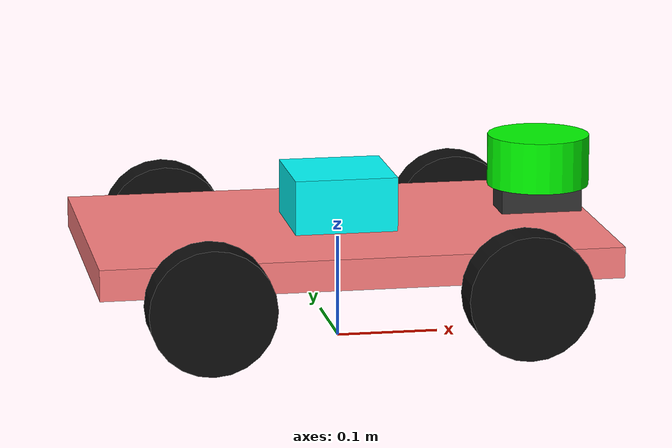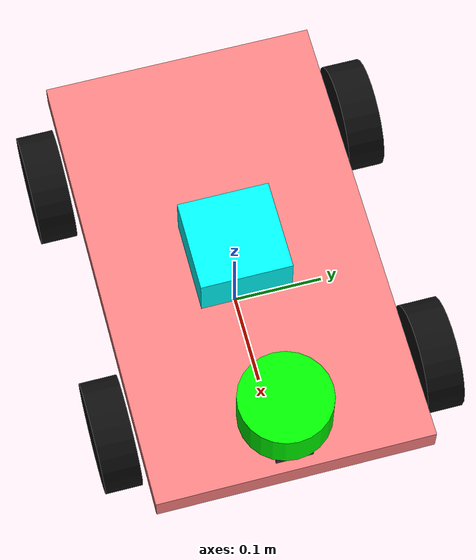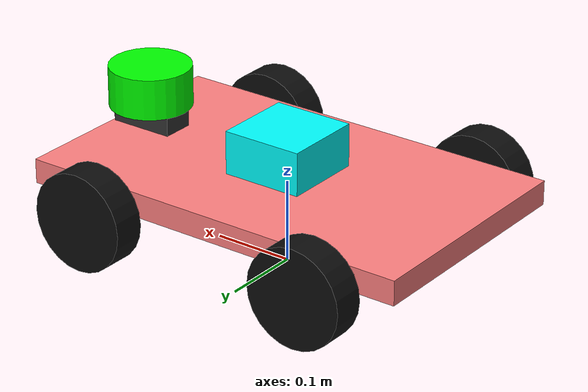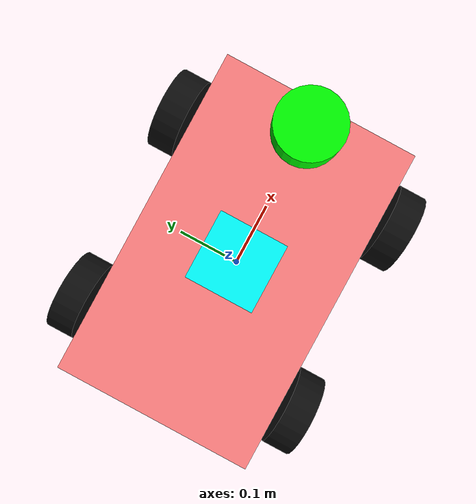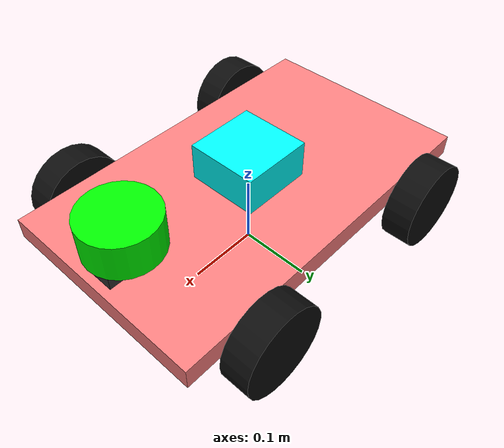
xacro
<?xml version="1.0"?>
<robot name="rover" xmlns:xacro="http://www.ros.org/wiki/xacro">
  <xacro:arg name="namespace" default="" />

  <!-- ======= MATERIAL DEFINITIONS ======= -->
  <material name="body_teal">
    <color rgba="1.0 0.5 0.5 1.0"/>
  </material>
  <material name="wheel_rim">
    <color rgba="0.7 0.7 0.75 1.0"/>
  </material>
  <material name="wheel_hub">
    <color rgba="0.2 0.2 0.2 1.0"/>
  </material>
  <material name="wheel_tread">
    <color rgba="0.05 0.05 0.05 1.0"/>
  </material>
  <material name="green_laser">
    <color rgba="0 1.0 0 1.0"/>
  </material>

  <!-- ======= GAZEBO MATERIALS ======= -->
  <gazebo reference="base_link">
    <material>Gazebo/Green</material>
  </gazebo>
  <gazebo reference="front_left_wheel">
    <material>Gazebo/Black</material>
    <mu1 value= "0.0"/> <!--main direction-->
    <mu2 value= "0.0"/> <!--perpendicular direction-->
  </gazebo>
  <gazebo reference="front_right_wheel">
    <material>Gazebo/Black</material>
    <mu1 value= "0.0"/> <!--main direction-->
    <mu2 value= "0.0"/> <!--perpendicular direction-->
  </gazebo>
  <gazebo reference="rear_left_wheel">
    <material>Gazebo/Black</material>
  </gazebo>
  <gazebo reference="rear_right_wheel">
    <material>Gazebo/Black</material>
  </gazebo>

  <!-- ======= BASE FOOTPRINT ======= -->
  <link name="base_footprint"/>

  <joint name="base_footprint_joint" type="fixed">
    <parent link="base_footprint"/>
    <child link="base_link"/>
    <origin xyz="0 0 0.05" rpy="0 0 0"/>
  </joint>

  <!-- ======= MAIN BODY ======= -->
  <link name="base_link">
    <visual>
      <geometry>
        <box size="0.5 0.3 0.03"/>
      </geometry>
      <origin xyz="0 0 0.05" rpy="0 0 0"/>
      <material name="body_teal"/>
    </visual>
    <collision>
      <geometry>
        <box size="0.5 0.3 0.03"/>
      </geometry>
      <origin xyz="0 0 0" rpy="0 0 0"/>
    </collision>
    <inertial>
      <mass value="3.0"/>
      <inertia ixx="0.022725" ixy="0" ixz="0" iyy="0.062725" iyz="0" izz="0.085000"/>
    </inertial>
  </link>

   <!-- ======= WHEELS (solid cylinders) ======= -->
  <!-- Front Left Wheel -->
  <link name="front_left_wheel">
    <visual>
      <geometry>
        <cylinder length="0.04" radius="0.06"/>
      </geometry>
      <material name="wheel_tread"/>
    </visual>
    <collision>
      <geometry>
        <cylinder length="0.04" radius="0.06"/>
      </geometry>
    </collision>
    <inertial>
      <mass value="0.3"/>
      <inertia ixx="0.00031" ixy="0" ixz="0" iyy="0.00054" iyz="0" izz="0.00031"/>
    </inertial>
  </link>

  <joint name="front_left_wheel_joint" type="continuous">
    <parent link="base_link"/>
    <child link="front_left_wheel"/>
    <origin xyz="0.15 0.175 0.03" rpy="${-pi/2} 0 0"/>
    <axis xyz="0 0 1"/>
  </joint>

  <!-- Front Right Wheel -->
  <link name="front_right_wheel">
    <visual>
      <geometry>
        <cylinder length="0.04" radius="0.06"/>
      </geometry>
      <material name="wheel_tread"/>
    </visual>
    <collision>
      <geometry>
        <cylinder length="0.04" radius="0.06"/>
      </geometry>
    </collision>
    <inertial>
      <mass value="0.3"/>
      <origin xyz="0 0 0"/>
      <inertia ixx="0.00031" ixy="0" ixz="0" iyy="0.00054" iyz="0" izz="0.00031"/>
    </inertial>
  </link>

  <joint name="front_right_wheel_joint" type="continuous">
    <parent link="base_link"/>
    <child link="front_right_wheel"/>
    <origin xyz="0.15 -0.175 0.03" rpy="${pi/2} 0 0"/>
    <axis xyz="0 0 -1"/>
  </joint>

  <!-- Rear Left Wheel -->
  <link name="rear_left_wheel">
    <visual>
      <geometry>
        <cylinder length="0.04" radius="0.06"/>
      </geometry>
      <material name="wheel_tread"/>
    </visual>
    <collision>
      <geometry>
        <cylinder length="0.04" radius="0.06"/>
      </geometry>
    </collision>
    <inertial>
      <mass value="0.3"/>
      <inertia ixx="0.00031" ixy="0" ixz="0" iyy="0.00054" iyz="0" izz="0.00031"/>
    </inertial>
  </link>

  <joint name="rear_left_wheel_joint" type="continuous">
    <parent link="base_link"/>
    <child link="rear_left_wheel"/>
    <origin xyz="-0.15 0.175 0.03" rpy="${-pi/2} 0 0"/>
    <axis xyz="0 0 1"/>
  </joint>

  <!-- Rear Right Wheel -->
  <link name="rear_right_wheel">
    <visual>
      <geometry>
        <cylinder length="0.04" radius="0.06"/>
      </geometry>
      <material name="wheel_tread"/>
    </visual>
    <collision>
      <geometry>
        <cylinder length="0.04" radius="0.06"/>
      </geometry>
    </collision>
    <inertial>
      <mass value="0.3"/>
      <inertia ixx="0.00031" ixy="0" ixz="0" iyy="0.00054" iyz="0" izz="0.00031"/>
    </inertial>
  </link>

  <joint name="rear_right_wheel_joint" type="continuous">
    <parent link="base_link"/>
    <child link="rear_right_wheel"/>
    <origin xyz="-0.15 -0.175 0.03" rpy="${pi/2} 0 0"/>
    <axis xyz="0 0 -1"/>
  </joint>

  <link name="link2_mount">
    <visual>
      <geometry>
        <box size="0.08 0.04 0.04"/>
      </geometry>
      <origin xyz="0 0 0" rpy="0 0 0"/>
      <material name="wheel_hub"/>
    </visual>
    <inertial>
      <mass value="0.1"/>
      <origin xyz="0 0 0"/>
      <inertia ixx="0.00002667" ixy="0.0" ixz="0.0" iyy="0.00006667" iyz="0.0" izz="0.00006667"/>
    </inertial>
  </link>

  <!-- ======= LASER SENSORS ======= -->
  <!-- Vertical laser mounted on link1_mount -->

  <!-- Horizontal laser mounted on base_link -->
  <link name="laser_link2">
    <visual>
      <geometry>
        <cylinder length="0.05" radius="0.05"/>
      </geometry>
      <material name="green_laser"/>
    </visual>
    <collision>
      <geometry>
        <cylinder length="0.05" radius="0.05"/>
      </geometry>
      <origin xyz="0 0 0" rpy="0 0 0"/>
    </collision>
    <inertial>
      <mass value="0.1"/>
      <inertia ixx="0.00008333" ixy="0.0" ixz="0.0" iyy="0.000125" iyz="0.0" izz="0.00008333"/>
    </inertial>
  </link>

   <joint name="base_to_link2_joint" type="fixed">
    <parent link="base_link"/>
    <child link="link2_mount"/>
    <origin xyz="0.20 0 0.09" rpy="0 0 0"/>
  </joint>

  <joint name="laser_joint2" type="fixed">
    <parent link="link2_mount"/>
    <child link="laser_link2"/>
    <origin xyz="0 0 0.03"  rpy="0 0 0"/>
  </joint>

  <!-- ======= GAZEBO PLUGINS for sensors ======= -->
  <gazebo reference="link1_mount">
    <sensor name="laser_vertical" type="ray">
      <pose>0 0 0 0 0 0</pose>
      <visualize>false</visualize>
      <update_rate>10.0</update_rate>
      <ray>
        <scan>
          <horizontal>
            <samples>720</samples>
            <resolution>1.0</resolution>
            <min_angle>-1.57</min_angle>
            <max_angle>1.57</max_angle>
          </horizontal>
        </scan>
        <range>
          <min>0.1</min>
          <max>10.0</max>
          <resolution>0.01</resolution>
        </range>
      </ray>
      <plugin name="gazebo_ros_vertical_laser" filename="libgazebo_ros_ray_sensor.so">
        <ros>
         <remapping>~/out:=v_scan</remapping>
        </ros>
        <topicName>/vertical_scan</topicName>
        <frameName>laser_link1</frameName>
        <output_type>sensor_msgs/LaserScan</output_type>
      </plugin>
    </sensor>
  </gazebo>

  <gazebo reference="link2_mount">
    <sensor name="laser_horizontal" type="ray">
      <pose>0 0 0 0 0 0</pose>
      <visualize>true</visualize>
      <update_rate>10</update_rate>
      <ray>
        <scan>
          <horizontal>
            <samples>720</samples>
            <resolution>1.0</resolution>
            <min_angle>-3.14</min_angle>
            <max_angle>3.14</max_angle>
          </horizontal>
        </scan>
        <range>
          <min>0.1</min>
          <max>10.0</max>
          <resolution>0.01</resolution>
        </range>
      </ray>
      <plugin name="gazebo_ros_horizontal_laser" filename="libgazebo_ros_ray_sensor.so">
        <ros>
         <remapping>~/out:=scan</remapping>
        </ros>
        <topicName>/horizontal_scan</topicName>
        <frameName>laser_link2</frameName>
        <output_type>sensor_msgs/LaserScan</output_type>
      </plugin>
    </sensor>
  </gazebo>

  <joint name="imu_joint" type="fixed">
    <parent link="base_link"/>
    <child link="imu_link"/>
    <origin xyz="0.0 0 0.068" rpy="0 0 0"/>
  </joint>

  <link name="imu_link">
   <visual>
    <geometry>
      <box size="0.1 0.1 0.1" />
    </geometry>
       <material name="Cyan">
         <color rgba="0 1.0 1.0 1.0" />
       </material>
   </visual>
   <collision>
    <geometry>
      <box size="0.1 0.1 0.1" />
    </geometry>
   </collision>
   <inertial>
    <mass value="0.01"/>
    <inertia
      ixx="1e-5" iyy="1e-5" izz="1e-5"
      ixy="0" ixz="0" iyz="0"/>
   </inertial>
  </link>

  <gazebo reference="imu_link">
  <sensor name="imu_sensor" type="imu">
    <plugin filename="libgazebo_ros_imu_sensor.so" name="gazebo_ros_imu_sensor">
      <ros>
        <namespace>/</namespace>
        <remapping>~/out:=imu</remapping>
      </ros>
      <initial_orientation_as_reference>false</initial_orientation_as_reference>
      <frame_name>imu_link</frame_name>
    </plugin>
    <always_on>true</always_on>
    <update_rate>100</update_rate>
    <visualize>true</visualize>
    <imu>
               <angular_velocity>
                   <x>
                       <noise type="gaussian">
                           <mean>0.0</mean>
                           <stddev>2e-4</stddev>
                           <bias_mean>0.0000075</bias_mean>
                           <bias_stddev>0.0000008</bias_stddev>
                       </noise>
                   </x>
                   <y>
                       <noise type="gaussian">
                           <mean>0.0</mean>
                           <stddev>2e-4</stddev>
                           <bias_mean>0.0000075</bias_mean>
                           <bias_stddev>0.0000008</bias_stddev>
                       </noise>
                   </y>
                   <z>
                       <noise type="gaussian">
                           <mean>0.0</mean>
                           <stddev>2e-4</stddev>
                           <bias_mean>0.0000075</bias_mean>
                           <bias_stddev>0.0000008</bias_stddev>
                       </noise>
                   </z>
               </angular_velocity>
               <linear_acceleration>
                   <x>
                       <noise type="gaussian">
                           <mean>0.0</mean>
                           <stddev>1.7e-2</stddev>
                           <bias_mean>0.1</bias_mean>
                           <bias_stddev>0.001</bias_stddev>
                       </noise>
                   </x>
                   <y>
                       <noise type="gaussian">
                           <mean>0.0</mean>
                           <stddev>1.7e-2</stddev>
                           <bias_mean>0.1</bias_mean>
                           <bias_stddev>0.001</bias_stddev>
                       </noise>
                   </y>
                   <z>
                       <noise type="gaussian">
                           <mean>0.0</mean>
                           <stddev>1.7e-2</stddev>
                           <bias_mean>0.1</bias_mean>
                           <bias_stddev>0.001</bias_stddev>
                       </noise>
                   </z>
               </linear_acceleration>
           </imu>
       </sensor>
 </gazebo>

  <!-- ROS2 Control Hardware Configuration -->
  <ros2_control name="GazeboSystem" type="system">
    <hardware>
      <plugin>gazebo_ros2_control/GazeboSystem</plugin>
    </hardware>

    <joint name="front_left_wheel_joint">
      <command_interface name="velocity">
        <param name="min">-1</param>
        <param name="max">1</param>
      </command_interface>
      <state_interface name="position"/>
      <state_interface name="velocity"/>
    </joint>

    <joint name="rear_left_wheel_joint">
      <command_interface name="velocity">
        <param name="min">-1</param>
        <param name="max">1</param>
      </command_interface>
      <state_interface name="position"/>
      <state_interface name="velocity"/>
    </joint>

    <joint name="front_right_wheel_joint">
      <command_interface name="velocity">
        <param name="min">-1</param>
        <param name="max">1</param>
      </command_interface>
      <state_interface name="position"/>
      <state_interface name="velocity"/>
    </joint>

    <joint name="rear_right_wheel_joint">
      <command_interface name="velocity">
        <param name="min">-1</param>
        <param name="max">1</param>
      </command_interface>
      <state_interface name="position"/>
      <state_interface name="velocity"/>
    </joint>
  </ros2_control>

  <!-- Gazebo Plugin to load ros2_control -->
  <gazebo>
    <plugin filename="libgazebo_ros2_control.so" name="gazebo_ros2_control">
    <parameters>$(find w_rover)/config/rover_controllers.yaml</parameters>
      <ros>
        <namespace>$(arg namespace)</namespace>
        <remapping>/diff_drive_controller/cmd_vel_unstamped:=/cmd_vel</remapping>
        <remapping>/diff_drive_controller/odom:=/odom</remapping>
      </ros>

    </plugin>
  </gazebo>
</robot>
